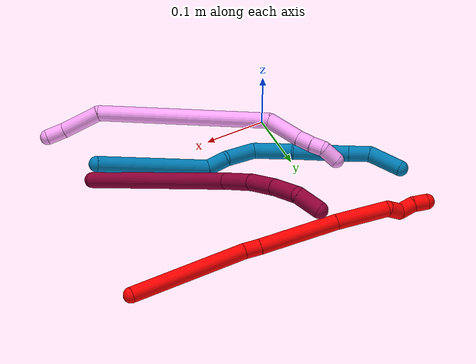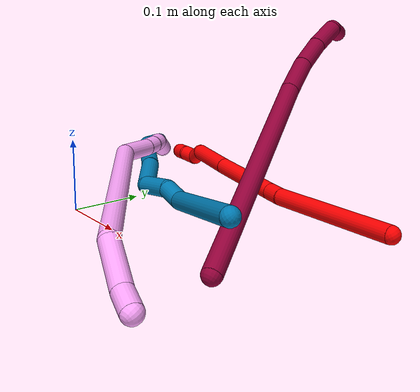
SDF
<sdf version="1.7">
 <world name="default">
  <model name="2">
   <static>0</static>
   <link name="2">
    <collision name="collision-cylinder-e_1_1_4">
     <pose>-0.081444 0.021809 0.044616 -0.454664 -1.02323 0.258329</pose>
     <geometry><cylinder><radius>0.0125</radius><length>0.190781</length></cylinder></geometry>
     <surface>
      <friction><ode><mu>1.16</mu><mu2>1.16</mu2><slip1>0</slip1><slip2>0</slip2></ode></friction>
      <contact><ode><kp>1e+06</kp><kd>1</kd><max_vel>0</max_vel><min_depth>0.001</min_depth></ode></contact>
     </surface>
    </collision>
    <visual name="visual-cylinder-e_1_1_4">
     <pose>-0.081444 0.021809 0.044616 -0.454664 -1.02323 0.258329</pose>
     <geometry><cylinder><radius>0.0125</radius><length>0.190781</length></cylinder></geometry>
     <material><ambient>1 0 0 1</ambient></material>
    </visual>
    <collision name="collision-cylinder-e_2_4_5">
     <pose>-0.173365 0.04847 0.095147 -0.686949 -0.940199 0.359516</pose>
     <geometry><cylinder><radius>0.0125</radius><length>0.025947</length></cylinder></geometry>
     <surface>
      <friction><ode><mu>1.16</mu><mu2>1.16</mu2><slip1>0</slip1><slip2>0</slip2></ode></friction>
      <contact><ode><kp>1e+06</kp><kd>1</kd><max_vel>0</max_vel><min_depth>0.001</min_depth></ode></contact>
     </surface>
    </collision>
    <visual name="visual-cylinder-e_2_4_5">
     <pose>-0.173365 0.04847 0.095147 -0.686949 -0.940199 0.359516</pose>
     <geometry><cylinder><radius>0.0125</radius><length>0.025947</length></cylinder></geometry>
     <material><ambient>1 0 0 1</ambient></material>
    </visual>
    <collision name="collision-cylinder-e_3_5_6">
     <pose>-0.234068 0.075944 0.132165 -0.628837 -0.91728 0.318427</pose>
     <geometry><cylinder><radius>0.0125</radius><length>0.126518</length></cylinder></geometry>
     <surface>
      <friction><ode><mu>1.16</mu><mu2>1.16</mu2><slip1>0</slip1><slip2>0</slip2></ode></friction>
      <contact><ode><kp>1e+06</kp><kd>1</kd><max_vel>0</max_vel><min_depth>0.001</min_depth></ode></contact>
     </surface>
    </collision>
    <visual name="visual-cylinder-e_3_5_6">
     <pose>-0.234068 0.075944 0.132165 -0.628837 -0.91728 0.318427</pose>
     <geometry><cylinder><radius>0.0125</radius><length>0.126518</length></cylinder></geometry>
     <material><ambient>1 0 0 1</ambient></material>
    </visual>
    <collision name="collision-cylinder-e_4_6_7">
     <pose>-0.317243 0.115919 0.182506 -0.733906 -0.904481 0.36921</pose>
     <geometry><cylinder><radius>0.0125</radius><length>0.083831</length></cylinder></geometry>
     <surface>
      <friction><ode><mu>1.16</mu><mu2>1.16</mu2><slip1>0</slip1><slip2>0</slip2></ode></friction>
      <contact><ode><kp>1e+06</kp><kd>1</kd><max_vel>0</max_vel><min_depth>0.001</min_depth></ode></contact>
     </surface>
    </collision>
    <visual name="visual-cylinder-e_4_6_7">
     <pose>-0.317243 0.115919 0.182506 -0.733906 -0.904481 0.36921</pose>
     <geometry><cylinder><radius>0.0125</radius><length>0.083831</length></cylinder></geometry>
     <material><ambient>1 0 0 1</ambient></material>
    </visual>
    <collision name="collision-cylinder-e_5_7_8">
     <pose>-0.362173 0.136264 0.200426 -1.98583 -1.30427 1.72789</pose>
     <geometry><cylinder><radius>0.0125</radius><length>0.024837</length></cylinder></geometry>
     <surface>
      <friction><ode><mu>1.16</mu><mu2>1.16</mu2><slip1>0</slip1><slip2>0</slip2></ode></friction>
      <contact><ode><kp>1e+06</kp><kd>1</kd><max_vel>0</max_vel><min_depth>0.001</min_depth></ode></contact>
     </surface>
    </collision>
    <visual name="visual-cylinder-e_5_7_8">
     <pose>-0.362173 0.136264 0.200426 -1.98583 -1.30427 1.72789</pose>
     <geometry><cylinder><radius>0.0125</radius><length>0.024837</length></cylinder></geometry>
     <material><ambient>1 0 0 1</ambient></material>
    </visual>
    <collision name="collision-cylinder-e_6_8_9">
     <pose>-0.384061 0.141376 0.206164 -0.291709 -0.931388 0.147383</pose>
     <geometry><cylinder><radius>0.0125</radius><length>0.024695</length></cylinder></geometry>
     <surface>
      <friction><ode><mu>1.16</mu><mu2>1.16</mu2><slip1>0</slip1><slip2>0</slip2></ode></friction>
      <contact><ode><kp>1e+06</kp><kd>1</kd><max_vel>0</max_vel><min_depth>0.001</min_depth></ode></contact>
     </surface>
    </collision>
    <visual name="visual-cylinder-e_6_8_9">
     <pose>-0.384061 0.141376 0.206164 -0.291709 -0.931388 0.147383</pose>
     <geometry><cylinder><radius>0.0125</radius><length>0.024695</length></cylinder></geometry>
     <material><ambient>1 0 0 1</ambient></material>
    </visual>
    <collision name="collision-cylinder-e_7_9_2">
     <pose>-0.403821 0.148087 0.217539 -0.816126 -1.0016 0.464718</pose>
     <geometry><cylinder><radius>0.0125</radius><length>0.023391</length></cylinder></geometry>
     <surface>
      <friction><ode><mu>1.16</mu><mu2>1.16</mu2><slip1>0</slip1><slip2>0</slip2></ode></friction>
      <contact><ode><kp>1e+06</kp><kd>1</kd><max_vel>0</max_vel><min_depth>0.001</min_depth></ode></contact>
     </surface>
    </collision>
    <visual name="visual-cylinder-e_7_9_2">
     <pose>-0.403821 0.148087 0.217539 -0.816126 -1.0016 0.464718</pose>
     <geometry><cylinder><radius>0.0125</radius><length>0.023391</length></cylinder></geometry>
     <material><ambient>1 0 0 1</ambient></material>
    </visual>
    <collision name="collision-sphere-2">
     <pose>-0.413673 0.152679 0.221857 0 -0 0</pose>
     <geometry><sphere><radius>0.0125</radius></sphere></geometry>
     <surface>
      <friction><ode><mu>1.16</mu><mu2>1.16</mu2><slip1>0</slip1><slip2>0</slip2></ode></friction>
      <contact><ode><kp>1e+06</kp><kd>1</kd><max_vel>0</max_vel><min_depth>0.001</min_depth></ode></contact>
     </surface>
    </collision>
    <visual name="visual-sphere-2">
     <pose>-0.413673 0.152679 0.221857 0 -0 0</pose>
     <geometry><sphere><radius>0.0125</radius></sphere></geometry>
     <material><ambient>1 0 0 1</ambient></material>
    </visual>
    <collision name="collision-sphere-9">
     <pose>-0.39397 0.143495 0.21322 0 -0 0</pose>
     <geometry><sphere><radius>0.0125</radius></sphere></geometry>
     <surface>
      <friction><ode><mu>1.16</mu><mu2>1.16</mu2><slip1>0</slip1><slip2>0</slip2></ode></friction>
      <contact><ode><kp>1e+06</kp><kd>1</kd><max_vel>0</max_vel><min_depth>0.001</min_depth></ode></contact>
     </surface>
    </collision>
    <visual name="visual-sphere-9">
     <pose>-0.39397 0.143495 0.21322 0 -0 0</pose>
     <geometry><sphere><radius>0.0125</radius></sphere></geometry>
     <material><ambient>1 0 0 1</ambient></material>
    </visual>
    <collision name="collision-sphere-4">
     <pose>-0.162887 0.043619 0.089232 0 -0 0</pose>
     <geometry><sphere><radius>0.0125</radius></sphere></geometry>
     <surface>
      <friction><ode><mu>1.16</mu><mu2>1.16</mu2><slip1>0</slip1><slip2>0</slip2></ode></friction>
      <contact><ode><kp>1e+06</kp><kd>1</kd><max_vel>0</max_vel><min_depth>0.001</min_depth></ode></contact>
     </surface>
    </collision>
    <visual name="visual-sphere-4">
     <pose>-0.162887 0.043619 0.089232 0 -0 0</pose>
     <geometry><sphere><radius>0.0125</radius></sphere></geometry>
     <material><ambient>1 0 0 1</ambient></material>
    </visual>
    <collision name="collision-sphere-1">
     <geometry><sphere><radius>0.0125</radius></sphere></geometry>
     <surface>
      <friction><ode><mu>1.16</mu><mu2>1.16</mu2><slip1>0</slip1><slip2>0</slip2></ode></friction>
      <contact><ode><kp>1e+06</kp><kd>1</kd><max_vel>0</max_vel><min_depth>0.001</min_depth></ode></contact>
     </surface>
    </collision>
    <visual name="visual-sphere-1">
     <geometry><sphere><radius>0.0125</radius></sphere></geometry>
     <material><ambient>1 0 0 1</ambient></material>
    </visual>
    <collision name="collision-sphere-8">
     <pose>-0.374153 0.139257 0.199107 0 -0 0</pose>
     <geometry><sphere><radius>0.0125</radius></sphere></geometry>
     <surface>
      <friction><ode><mu>1.16</mu><mu2>1.16</mu2><slip1>0</slip1><slip2>0</slip2></ode></friction>
      <contact><ode><kp>1e+06</kp><kd>1</kd><max_vel>0</max_vel><min_depth>0.001</min_depth></ode></contact>
     </surface>
    </collision>
    <visual name="visual-sphere-8">
     <pose>-0.374153 0.139257 0.199107 0 -0 0</pose>
     <geometry><sphere><radius>0.0125</radius></sphere></geometry>
     <material><ambient>1 0 0 1</ambient></material>
    </visual>
    <collision name="collision-sphere-5">
     <pose>-0.183844 0.053321 0.101061 0 -0 0</pose>
     <geometry><sphere><radius>0.0125</radius></sphere></geometry>
     <surface>
      <friction><ode><mu>1.16</mu><mu2>1.16</mu2><slip1>0</slip1><slip2>0</slip2></ode></friction>
      <contact><ode><kp>1e+06</kp><kd>1</kd><max_vel>0</max_vel><min_depth>0.001</min_depth></ode></contact>
     </surface>
    </collision>
    <visual name="visual-sphere-5">
     <pose>-0.183844 0.053321 0.101061 0 -0 0</pose>
     <geometry><sphere><radius>0.0125</radius></sphere></geometry>
     <material><ambient>1 0 0 1</ambient></material>
    </visual>
    <collision name="collision-sphere-6">
     <pose>-0.284293 0.098566 0.163268 0 -0 0</pose>
     <geometry><sphere><radius>0.0125</radius></sphere></geometry>
     <surface>
      <friction><ode><mu>1.16</mu><mu2>1.16</mu2><slip1>0</slip1><slip2>0</slip2></ode></friction>
      <contact><ode><kp>1e+06</kp><kd>1</kd><max_vel>0</max_vel><min_depth>0.001</min_depth></ode></contact>
     </surface>
    </collision>
    <visual name="visual-sphere-6">
     <pose>-0.284293 0.098566 0.163268 0 -0 0</pose>
     <geometry><sphere><radius>0.0125</radius></sphere></geometry>
     <material><ambient>1 0 0 1</ambient></material>
    </visual>
    <collision name="collision-sphere-7">
     <pose>-0.350193 0.133271 0.201744 0 -0 0</pose>
     <geometry><sphere><radius>0.0125</radius></sphere></geometry>
     <surface>
      <friction><ode><mu>1.16</mu><mu2>1.16</mu2><slip1>0</slip1><slip2>0</slip2></ode></friction>
      <contact><ode><kp>1e+06</kp><kd>1</kd><max_vel>0</max_vel><min_depth>0.001</min_depth></ode></contact>
     </surface>
    </collision>
    <visual name="visual-sphere-7">
     <pose>-0.350193 0.133271 0.201744 0 -0 0</pose>
     <geometry><sphere><radius>0.0125</radius></sphere></geometry>
     <material><ambient>1 0 0 1</ambient></material>
    </visual>
    <inertial>
     <pose>-0.208341 0.070168 0.116319 0 -0 0</pose>
     <mass>0.5</mass>
     <inertia>
      <ixx>0.000521</ixx>
      <ixy>0</ixy>
      <ixz>0</ixz>
      <iyy>0.000915</iyy>
      <iyz>0</iyz>
      <izz>0.000484</izz>
     </inertia>
    </inertial>
   </link>
   <pose>0.34993 0.243327 0.012501 0.189153 -0.53649 0.138691</pose>
  </model>
  <model name="4">
   <static>0</static>
   <link name="4">
    <collision name="collision-cylinder-e_1_1_4">
     <pose>0.008783 0.009709 -0.006749 -2.17822 0.638866 -1.12827</pose>
     <geometry><cylinder><radius>0.0125</radius><length>0.029458</length></cylinder></geometry>
     <surface>
      <friction><ode><mu>1.16</mu><mu2>1.16</mu2><slip1>0</slip1><slip2>0</slip2></ode></friction>
      <contact><ode><kp>1e+06</kp><kd>1</kd><max_vel>0</max_vel><min_depth>0.001</min_depth></ode></contact>
     </surface>
    </collision>
    <visual name="visual-cylinder-e_1_1_4">
     <pose>0.008783 0.009709 -0.006749 -2.17822 0.638866 -1.12827</pose>
     <geometry><cylinder><radius>0.0125</radius><length>0.029458</length></cylinder></geometry>
     <material><ambient>1 0.65098 0.996078 1</ambient></material>
    </visual>
    <collision name="collision-cylinder-e_2_4_5">
     <pose>0.038702 0.035855 -0.031743 -2.4083 0.710669 -1.53657</pose>
     <geometry><cylinder><radius>0.0125</radius><length>0.064804</length></cylinder></geometry>
     <surface>
      <friction><ode><mu>1.16</mu><mu2>1.16</mu2><slip1>0</slip1><slip2>0</slip2></ode></friction>
      <contact><ode><kp>1e+06</kp><kd>1</kd><max_vel>0</max_vel><min_depth>0.001</min_depth></ode></contact>
     </surface>
    </collision>
    <visual name="visual-cylinder-e_2_4_5">
     <pose>0.038702 0.035855 -0.031743 -2.4083 0.710669 -1.53657</pose>
     <geometry><cylinder><radius>0.0125</radius><length>0.064804</length></cylinder></geometry>
     <material><ambient>1 0.65098 0.996078 1</ambient></material>
    </visual>
    <collision name="collision-cylinder-e_3_5_6">
     <pose>0.089737 0.152449 -0.140969 -2.30822 0.21746 -0.483611</pose>
     <geometry><cylinder><radius>0.0125</radius><length>0.277147</length></cylinder></geometry>
     <surface>
      <friction><ode><mu>1.16</mu><mu2>1.16</mu2><slip1>0</slip1><slip2>0</slip2></ode></friction>
      <contact><ode><kp>1e+06</kp><kd>1</kd><max_vel>0</max_vel><min_depth>0.001</min_depth></ode></contact>
     </surface>
    </collision>
    <visual name="visual-cylinder-e_3_5_6">
     <pose>0.089737 0.152449 -0.140969 -2.30822 0.21746 -0.483611</pose>
     <geometry><cylinder><radius>0.0125</radius><length>0.277147</length></cylinder></geometry>
     <material><ambient>1 0.65098 0.996078 1</ambient></material>
    </visual>
    <collision name="collision-cylinder-e_4_6_7">
     <pose>0.112994 0.26711 -0.256147 -2.60164 -0.231148 0.794425</pose>
     <geometry><cylinder><radius>0.0125</radius><length>0.057964</length></cylinder></geometry>
     <surface>
      <friction><ode><mu>1.16</mu><mu2>1.16</mu2><slip1>0</slip1><slip2>0</slip2></ode></friction>
      <contact><ode><kp>1e+06</kp><kd>1</kd><max_vel>0</max_vel><min_depth>0.001</min_depth></ode></contact>
     </surface>
    </collision>
    <visual name="visual-cylinder-e_4_6_7">
     <pose>0.112994 0.26711 -0.256147 -2.60164 -0.231148 0.794425</pose>
     <geometry><cylinder><radius>0.0125</radius><length>0.057964</length></cylinder></geometry>
     <material><ambient>1 0.65098 0.996078 1</ambient></material>
    </visual>
    <collision name="collision-cylinder-e_5_7_8">
     <pose>0.10464 0.287703 -0.290258 -2.59067 -0.146314 0.507406</pose>
     <geometry><cylinder><radius>0.0125</radius><length>0.02352</length></cylinder></geometry>
     <surface>
      <friction><ode><mu>1.16</mu><mu2>1.16</mu2><slip1>0</slip1><slip2>0</slip2></ode></friction>
      <contact><ode><kp>1e+06</kp><kd>1</kd><max_vel>0</max_vel><min_depth>0.001</min_depth></ode></contact>
     </surface>
    </collision>
    <visual name="visual-cylinder-e_5_7_8">
     <pose>0.10464 0.287703 -0.290258 -2.59067 -0.146314 0.507406</pose>
     <geometry><cylinder><radius>0.0125</radius><length>0.02352</length></cylinder></geometry>
     <material><ambient>1 0.65098 0.996078 1</ambient></material>
    </visual>
    <collision name="collision-cylinder-e_6_8_9">
     <pose>0.102174 0.299965 -0.308313 -2.493 -0.073419 0.217636</pose>
     <geometry><cylinder><radius>0.0125</radius><length>0.020489</length></cylinder></geometry>
     <surface>
      <friction><ode><mu>1.16</mu><mu2>1.16</mu2><slip1>0</slip1><slip2>0</slip2></ode></friction>
      <contact><ode><kp>1e+06</kp><kd>1</kd><max_vel>0</max_vel><min_depth>0.001</min_depth></ode></contact>
     </surface>
    </collision>
    <visual name="visual-cylinder-e_6_8_9">
     <pose>0.102174 0.299965 -0.308313 -2.493 -0.073419 0.217636</pose>
     <geometry><cylinder><radius>0.0125</radius><length>0.020489</length></cylinder></geometry>
     <material><ambient>1 0.65098 0.996078 1</ambient></material>
    </visual>
    <collision name="collision-cylinder-e_7_9_2">
     <pose>0.095311 0.316608 -0.321944 -2.05366 -0.477061 0.764506</pose>
     <geometry><cylinder><radius>0.0125</radius><length>0.026619</length></cylinder></geometry>
     <surface>
      <friction><ode><mu>1.16</mu><mu2>1.16</mu2><slip1>0</slip1><slip2>0</slip2></ode></friction>
      <contact><ode><kp>1e+06</kp><kd>1</kd><max_vel>0</max_vel><min_depth>0.001</min_depth></ode></contact>
     </surface>
    </collision>
    <visual name="visual-cylinder-e_7_9_2">
     <pose>0.095311 0.316608 -0.321944 -2.05366 -0.477061 0.764506</pose>
     <geometry><cylinder><radius>0.0125</radius><length>0.026619</length></cylinder></geometry>
     <material><ambient>1 0.65098 0.996078 1</ambient></material>
    </visual>
    <collision name="collision-sphere-2">
     <pose>0.0892 0.32708 -0.327434 0 -0 0</pose>
     <geometry><sphere><radius>0.0125</radius></sphere></geometry>
     <surface>
      <friction><ode><mu>1.16</mu><mu2>1.16</mu2><slip1>0</slip1><slip2>0</slip2></ode></friction>
      <contact><ode><kp>1e+06</kp><kd>1</kd><max_vel>0</max_vel><min_depth>0.001</min_depth></ode></contact>
     </surface>
    </collision>
    <visual name="visual-sphere-2">
     <pose>0.0892 0.32708 -0.327434 0 -0 0</pose>
     <geometry><sphere><radius>0.0125</radius></sphere></geometry>
     <material><ambient>1 0.65098 0.996078 1</ambient></material>
    </visual>
    <collision name="collision-sphere-9">
     <pose>0.101423 0.306137 -0.316455 0 -0 0</pose>
     <geometry><sphere><radius>0.0125</radius></sphere></geometry>
     <surface>
      <friction><ode><mu>1.16</mu><mu2>1.16</mu2><slip1>0</slip1><slip2>0</slip2></ode></friction>
      <contact><ode><kp>1e+06</kp><kd>1</kd><max_vel>0</max_vel><min_depth>0.001</min_depth></ode></contact>
     </surface>
    </collision>
    <visual name="visual-sphere-9">
     <pose>0.101423 0.306137 -0.316455 0 -0 0</pose>
     <geometry><sphere><radius>0.0125</radius></sphere></geometry>
     <material><ambient>1 0.65098 0.996078 1</ambient></material>
    </visual>
    <collision name="collision-sphere-4">
     <pose>0.017565 0.019418 -0.013497 0 -0 0</pose>
     <geometry><sphere><radius>0.0125</radius></sphere></geometry>
     <surface>
      <friction><ode><mu>1.16</mu><mu2>1.16</mu2><slip1>0</slip1><slip2>0</slip2></ode></friction>
      <contact><ode><kp>1e+06</kp><kd>1</kd><max_vel>0</max_vel><min_depth>0.001</min_depth></ode></contact>
     </surface>
    </collision>
    <visual name="visual-sphere-4">
     <pose>0.017565 0.019418 -0.013497 0 -0 0</pose>
     <geometry><sphere><radius>0.0125</radius></sphere></geometry>
     <material><ambient>1 0.65098 0.996078 1</ambient></material>
    </visual>
    <collision name="collision-sphere-1">
     <geometry><sphere><radius>0.0125</radius></sphere></geometry>
     <surface>
      <friction><ode><mu>1.16</mu><mu2>1.16</mu2><slip1>0</slip1><slip2>0</slip2></ode></friction>
      <contact><ode><kp>1e+06</kp><kd>1</kd><max_vel>0</max_vel><min_depth>0.001</min_depth></ode></contact>
     </surface>
    </collision>
    <visual name="visual-sphere-1">
     <geometry><sphere><radius>0.0125</radius></sphere></geometry>
     <material><ambient>1 0.65098 0.996078 1</ambient></material>
    </visual>
    <collision name="collision-sphere-8">
     <pose>0.102926 0.293793 -0.30017 0 -0 0</pose>
     <geometry><sphere><radius>0.0125</radius></sphere></geometry>
     <surface>
      <friction><ode><mu>1.16</mu><mu2>1.16</mu2><slip1>0</slip1><slip2>0</slip2></ode></friction>
      <contact><ode><kp>1e+06</kp><kd>1</kd><max_vel>0</max_vel><min_depth>0.001</min_depth></ode></contact>
     </surface>
    </collision>
    <visual name="visual-sphere-8">
     <pose>0.102926 0.293793 -0.30017 0 -0 0</pose>
     <geometry><sphere><radius>0.0125</radius></sphere></geometry>
     <material><ambient>1 0.65098 0.996078 1</ambient></material>
    </visual>
    <collision name="collision-sphere-5">
     <pose>0.05984 0.052293 -0.04999 0 -0 0</pose>
     <geometry><sphere><radius>0.0125</radius></sphere></geometry>
     <surface>
      <friction><ode><mu>1.16</mu><mu2>1.16</mu2><slip1>0</slip1><slip2>0</slip2></ode></friction>
      <contact><ode><kp>1e+06</kp><kd>1</kd><max_vel>0</max_vel><min_depth>0.001</min_depth></ode></contact>
     </surface>
    </collision>
    <visual name="visual-sphere-5">
     <pose>0.05984 0.052293 -0.04999 0 -0 0</pose>
     <geometry><sphere><radius>0.0125</radius></sphere></geometry>
     <material><ambient>1 0.65098 0.996078 1</ambient></material>
    </visual>
    <collision name="collision-sphere-6">
     <pose>0.119634 0.252606 -0.231949 0 -0 0</pose>
     <geometry><sphere><radius>0.0125</radius></sphere></geometry>
     <surface>
      <friction><ode><mu>1.16</mu><mu2>1.16</mu2><slip1>0</slip1><slip2>0</slip2></ode></friction>
      <contact><ode><kp>1e+06</kp><kd>1</kd><max_vel>0</max_vel><min_depth>0.001</min_depth></ode></contact>
     </surface>
    </collision>
    <visual name="visual-sphere-6">
     <pose>0.119634 0.252606 -0.231949 0 -0 0</pose>
     <geometry><sphere><radius>0.0125</radius></sphere></geometry>
     <material><ambient>1 0.65098 0.996078 1</ambient></material>
    </visual>
    <collision name="collision-sphere-7">
     <pose>0.106355 0.281613 -0.280345 0 -0 0</pose>
     <geometry><sphere><radius>0.0125</radius></sphere></geometry>
     <surface>
      <friction><ode><mu>1.16</mu><mu2>1.16</mu2><slip1>0</slip1><slip2>0</slip2></ode></friction>
      <contact><ode><kp>1e+06</kp><kd>1</kd><max_vel>0</max_vel><min_depth>0.001</min_depth></ode></contact>
     </surface>
    </collision>
    <visual name="visual-sphere-7">
     <pose>0.106355 0.281613 -0.280345 0 -0 0</pose>
     <geometry><sphere><radius>0.0125</radius></sphere></geometry>
     <material><ambient>1 0.65098 0.996078 1</ambient></material>
    </visual>
    <inertial>
     <pose>0.082557 0.163367 -0.155772 0 -0 0</pose>
     <mass>0.5</mass>
     <inertia>
      <ixx>0.000753</ixx>
      <ixy>0</ixy>
      <ixz>0</ixz>
      <iyy>-0.001722</iyy>
      <iyz>0</iyz>
      <izz>-0.001741</izz>
     </inertia>
    </inertial>
   </link>
   <pose>0.331663 -0.114133 0.016502 -2.26336 -0.853 -2.4281</pose>
  </model>
  <model name="8">
   <static>0</static>
   <link name="8">
    <collision name="collision-cylinder-e_1_1_4">
     <pose>-0.049716 0.0144 0.143486 -0.100027 -0.331994 0.016772</pose>
     <geometry><cylinder><radius>0.0125</radius><length>0.305071</length></cylinder></geometry>
     <surface>
      <friction><ode><mu>1.16</mu><mu2>1.16</mu2><slip1>0</slip1><slip2>0</slip2></ode></friction>
      <contact><ode><kp>1e+06</kp><kd>1</kd><max_vel>0</max_vel><min_depth>0.001</min_depth></ode></contact>
     </surface>
    </collision>
    <visual name="visual-cylinder-e_1_1_4">
     <pose>-0.049716 0.0144 0.143486 -0.100027 -0.331994 0.016772</pose>
     <geometry><cylinder><radius>0.0125</radius><length>0.305071</length></cylinder></geometry>
     <material><ambient>0.584314 0 0.227451 1</ambient></material>
    </visual>
    <collision name="collision-cylinder-e_2_4_5">
     <pose>-0.107058 0.032114 0.313577 -0.12387 -0.27712 0.017296</pose>
     <geometry><cylinder><radius>0.0125</radius><length>0.055751</length></cylinder></geometry>
     <surface>
      <friction><ode><mu>1.16</mu><mu2>1.16</mu2><slip1>0</slip1><slip2>0</slip2></ode></friction>
      <contact><ode><kp>1e+06</kp><kd>1</kd><max_vel>0</max_vel><min_depth>0.001</min_depth></ode></contact>
     </surface>
    </collision>
    <visual name="visual-cylinder-e_2_4_5">
     <pose>-0.107058 0.032114 0.313577 -0.12387 -0.27712 0.017296</pose>
     <geometry><cylinder><radius>0.0125</radius><length>0.055751</length></cylinder></geometry>
     <material><ambient>0.584314 0 0.227451 1</ambient></material>
    </visual>
    <collision name="collision-cylinder-e_3_5_6">
     <pose>-0.120969 0.041121 0.364106 -0.233692 -0.250214 0.029522</pose>
     <geometry><cylinder><radius>0.0125</radius><length>0.050762</length></cylinder></geometry>
     <surface>
      <friction><ode><mu>1.16</mu><mu2>1.16</mu2><slip1>0</slip1><slip2>0</slip2></ode></friction>
      <contact><ode><kp>1e+06</kp><kd>1</kd><max_vel>0</max_vel><min_depth>0.001</min_depth></ode></contact>
     </surface>
    </collision>
    <visual name="visual-cylinder-e_3_5_6">
     <pose>-0.120969 0.041121 0.364106 -0.233692 -0.250214 0.029522</pose>
     <geometry><cylinder><radius>0.0125</radius><length>0.050762</length></cylinder></geometry>
     <material><ambient>0.584314 0 0.227451 1</ambient></material>
    </visual>
    <collision name="collision-cylinder-e_4_6_7">
     <pose>-0.132426 0.054293 0.411962 -0.302835 -0.203443 0.031147</pose>
     <geometry><cylinder><radius>0.0125</radius><length>0.051206</length></cylinder></geometry>
     <surface>
      <friction><ode><mu>1.16</mu><mu2>1.16</mu2><slip1>0</slip1><slip2>0</slip2></ode></friction>
      <contact><ode><kp>1e+06</kp><kd>1</kd><max_vel>0</max_vel><min_depth>0.001</min_depth></ode></contact>
     </surface>
    </collision>
    <visual name="visual-cylinder-e_4_6_7">
     <pose>-0.132426 0.054293 0.411962 -0.302835 -0.203443 0.031147</pose>
     <geometry><cylinder><radius>0.0125</radius><length>0.051206</length></cylinder></geometry>
     <material><ambient>0.584314 0 0.227451 1</ambient></material>
    </visual>
    <collision name="collision-cylinder-e_5_7_2">
     <pose>-0.148791 0.073622 0.444866 -0.922915 -0.645417 0.329554</pose>
     <geometry><cylinder><radius>0.0125</radius><length>0.03721</length></cylinder></geometry>
     <surface>
      <friction><ode><mu>1.16</mu><mu2>1.16</mu2><slip1>0</slip1><slip2>0</slip2></ode></friction>
      <contact><ode><kp>1e+06</kp><kd>1</kd><max_vel>0</max_vel><min_depth>0.001</min_depth></ode></contact>
     </surface>
    </collision>
    <visual name="visual-cylinder-e_5_7_2">
     <pose>-0.148791 0.073622 0.444866 -0.922915 -0.645417 0.329554</pose>
     <geometry><cylinder><radius>0.0125</radius><length>0.03721</length></cylinder></geometry>
     <material><ambient>0.584314 0 0.227451 1</ambient></material>
    </visual>
    <collision name="collision-sphere-2">
     <pose>-0.159982 0.085473 0.453835 0 -0 0</pose>
     <geometry><sphere><radius>0.0125</radius></sphere></geometry>
     <surface>
      <friction><ode><mu>1.16</mu><mu2>1.16</mu2><slip1>0</slip1><slip2>0</slip2></ode></friction>
      <contact><ode><kp>1e+06</kp><kd>1</kd><max_vel>0</max_vel><min_depth>0.001</min_depth></ode></contact>
     </surface>
    </collision>
    <visual name="visual-sphere-2">
     <pose>-0.159982 0.085473 0.453835 0 -0 0</pose>
     <geometry><sphere><radius>0.0125</radius></sphere></geometry>
     <material><ambient>0.584314 0 0.227451 1</ambient></material>
    </visual>
    <collision name="collision-sphere-7">
     <pose>-0.137599 0.061771 0.435896 0 -0 0</pose>
     <geometry><sphere><radius>0.0125</radius></sphere></geometry>
     <surface>
      <friction><ode><mu>1.16</mu><mu2>1.16</mu2><slip1>0</slip1><slip2>0</slip2></ode></friction>
      <contact><ode><kp>1e+06</kp><kd>1</kd><max_vel>0</max_vel><min_depth>0.001</min_depth></ode></contact>
     </surface>
    </collision>
    <visual name="visual-sphere-7">
     <pose>-0.137599 0.061771 0.435896 0 -0 0</pose>
     <geometry><sphere><radius>0.0125</radius></sphere></geometry>
     <material><ambient>0.584314 0 0.227451 1</ambient></material>
    </visual>
    <collision name="collision-sphere-6">
     <pose>-0.127253 0.046815 0.388028 0 -0 0</pose>
     <geometry><sphere><radius>0.0125</radius></sphere></geometry>
     <surface>
      <friction><ode><mu>1.16</mu><mu2>1.16</mu2><slip1>0</slip1><slip2>0</slip2></ode></friction>
      <contact><ode><kp>1e+06</kp><kd>1</kd><max_vel>0</max_vel><min_depth>0.001</min_depth></ode></contact>
     </surface>
    </collision>
    <visual name="visual-sphere-6">
     <pose>-0.127253 0.046815 0.388028 0 -0 0</pose>
     <geometry><sphere><radius>0.0125</radius></sphere></geometry>
     <material><ambient>0.584314 0 0.227451 1</ambient></material>
    </visual>
    <collision name="collision-sphere-5">
     <pose>-0.114684 0.035426 0.340184 0 -0 0</pose>
     <geometry><sphere><radius>0.0125</radius></sphere></geometry>
     <surface>
      <friction><ode><mu>1.16</mu><mu2>1.16</mu2><slip1>0</slip1><slip2>0</slip2></ode></friction>
      <contact><ode><kp>1e+06</kp><kd>1</kd><max_vel>0</max_vel><min_depth>0.001</min_depth></ode></contact>
     </surface>
    </collision>
    <visual name="visual-sphere-5">
     <pose>-0.114684 0.035426 0.340184 0 -0 0</pose>
     <geometry><sphere><radius>0.0125</radius></sphere></geometry>
     <material><ambient>0.584314 0 0.227451 1</ambient></material>
    </visual>
    <collision name="collision-sphere-1">
     <geometry><sphere><radius>0.0125</radius></sphere></geometry>
     <surface>
      <friction><ode><mu>1.16</mu><mu2>1.16</mu2><slip1>0</slip1><slip2>0</slip2></ode></friction>
      <contact><ode><kp>1e+06</kp><kd>1</kd><max_vel>0</max_vel><min_depth>0.001</min_depth></ode></contact>
     </surface>
    </collision>
    <visual name="visual-sphere-1">
     <geometry><sphere><radius>0.0125</radius></sphere></geometry>
     <material><ambient>0.584314 0 0.227451 1</ambient></material>
    </visual>
    <collision name="collision-sphere-4">
     <pose>-0.099432 0.028801 0.286971 0 -0 0</pose>
     <geometry><sphere><radius>0.0125</radius></sphere></geometry>
     <surface>
      <friction><ode><mu>1.16</mu><mu2>1.16</mu2><slip1>0</slip1><slip2>0</slip2></ode></friction>
      <contact><ode><kp>1e+06</kp><kd>1</kd><max_vel>0</max_vel><min_depth>0.001</min_depth></ode></contact>
     </surface>
    </collision>
    <visual name="visual-sphere-4">
     <pose>-0.099432 0.028801 0.286971 0 -0 0</pose>
     <geometry><sphere><radius>0.0125</radius></sphere></geometry>
     <material><ambient>0.584314 0 0.227451 1</ambient></material>
    </visual>
    <inertial>
     <pose>-0.079187 0.027581 0.234773 0 -0 0</pose>
     <mass>0.5</mass>
     <inertia>
      <ixx>0.002321</ixx>
      <ixy>0</ixy>
      <ixz>0</ixz>
      <iyy>0.00246</iyy>
      <iyz>0</iyz>
      <izz>0.000587</izz>
     </inertia>
    </inertial>
   </link>
   <pose>0.304687 0.001206 0.011796 -0.743559 -0.269738 -0.111091</pose>
  </model>
  <model name="9">
   <static>0</static>
   <link name="9">
    <collision name="collision-cylinder-e_1_1_4">
     <pose>-0.042422 0.045929 -0.063667 -2.51665 -0.495427 1.32841</pose>
     <geometry><cylinder><radius>0.0125</radius><length>0.178465</length></cylinder></geometry>
     <surface>
      <friction><ode><mu>1.16</mu><mu2>1.16</mu2><slip1>0</slip1><slip2>0</slip2></ode></friction>
      <contact><ode><kp>1e+06</kp><kd>1</kd><max_vel>0</max_vel><min_depth>0.001</min_depth></ode></contact>
     </surface>
    </collision>
    <visual name="visual-cylinder-e_1_1_4">
     <pose>-0.042422 0.045929 -0.063667 -2.51665 -0.495427 1.32841</pose>
     <geometry><cylinder><radius>0.0125</radius><length>0.178465</length></cylinder></geometry>
     <material><ambient>0 0.490196 0.709804 1</ambient></material>
    </visual>
    <collision name="collision-cylinder-e_2_4_5">
     <pose>-0.09847 0.095349 -0.135528 -2.7388 -0.991828 2.41988</pose>
     <geometry><cylinder><radius>0.0125</radius><length>0.032559</length></cylinder></geometry>
     <surface>
      <friction><ode><mu>1.16</mu><mu2>1.16</mu2><slip1>0</slip1><slip2>0</slip2></ode></friction>
      <contact><ode><kp>1e+06</kp><kd>1</kd><max_vel>0</max_vel><min_depth>0.001</min_depth></ode></contact>
     </surface>
    </collision>
    <visual name="visual-cylinder-e_2_4_5">
     <pose>-0.09847 0.095349 -0.135528 -2.7388 -0.991828 2.41988</pose>
     <geometry><cylinder><radius>0.0125</radius><length>0.032559</length></cylinder></geometry>
     <material><ambient>0 0.490196 0.709804 1</ambient></material>
    </visual>
    <collision name="collision-cylinder-e_3_5_6">
     <pose>-0.126528 0.103765 -0.163595 -2.89867 -0.613999 2.40653</pose>
     <geometry><cylinder><radius>0.0125</radius><length>0.050097</length></cylinder></geometry>
     <surface>
      <friction><ode><mu>1.16</mu><mu2>1.16</mu2><slip1>0</slip1><slip2>0</slip2></ode></friction>
      <contact><ode><kp>1e+06</kp><kd>1</kd><max_vel>0</max_vel><min_depth>0.001</min_depth></ode></contact>
     </surface>
    </collision>
    <visual name="visual-cylinder-e_3_5_6">
     <pose>-0.126528 0.103765 -0.163595 -2.89867 -0.613999 2.40653</pose>
     <geometry><cylinder><radius>0.0125</radius><length>0.050097</length></cylinder></geometry>
     <material><ambient>0 0.490196 0.709804 1</ambient></material>
    </visual>
    <collision name="collision-cylinder-e_4_6_7">
     <pose>-0.161647 0.131657 -0.192314 -1.93849 -0.698987 0.9762</pose>
     <geometry><cylinder><radius>0.0125</radius><length>0.064305</length></cylinder></geometry>
     <surface>
      <friction><ode><mu>1.16</mu><mu2>1.16</mu2><slip1>0</slip1><slip2>0</slip2></ode></friction>
      <contact><ode><kp>1e+06</kp><kd>1</kd><max_vel>0</max_vel><min_depth>0.001</min_depth></ode></contact>
     </surface>
    </collision>
    <visual name="visual-cylinder-e_4_6_7">
     <pose>-0.161647 0.131657 -0.192314 -1.93849 -0.698987 0.9762</pose>
     <geometry><cylinder><radius>0.0125</radius><length>0.064305</length></cylinder></geometry>
     <material><ambient>0 0.490196 0.709804 1</ambient></material>
    </visual>
    <collision name="collision-cylinder-e_5_7_8">
     <pose>-0.208124 0.183723 -0.221427 -2.17913 -0.628789 1.11394</pose>
     <geometry><cylinder><radius>0.0125</radius><length>0.087693</length></cylinder></geometry>
     <surface>
      <friction><ode><mu>1.16</mu><mu2>1.16</mu2><slip1>0</slip1><slip2>0</slip2></ode></friction>
      <contact><ode><kp>1e+06</kp><kd>1</kd><max_vel>0</max_vel><min_depth>0.001</min_depth></ode></contact>
     </surface>
    </collision>
    <visual name="visual-cylinder-e_5_7_8">
     <pose>-0.208124 0.183723 -0.221427 -2.17913 -0.628789 1.11394</pose>
     <geometry><cylinder><radius>0.0125</radius><length>0.087693</length></cylinder></geometry>
     <material><ambient>0 0.490196 0.709804 1</ambient></material>
    </visual>
    <collision name="collision-cylinder-e_6_8_9">
     <pose>-0.244224 0.223882 -0.248686 -2.13465 -0.66737 1.12341</pose>
     <geometry><cylinder><radius>0.0125</radius><length>0.033319</length></cylinder></geometry>
     <surface>
      <friction><ode><mu>1.16</mu><mu2>1.16</mu2><slip1>0</slip1><slip2>0</slip2></ode></friction>
      <contact><ode><kp>1e+06</kp><kd>1</kd><max_vel>0</max_vel><min_depth>0.001</min_depth></ode></contact>
     </surface>
    </collision>
    <visual name="visual-cylinder-e_6_8_9">
     <pose>-0.244224 0.223882 -0.248686 -2.13465 -0.66737 1.12341</pose>
     <geometry><cylinder><radius>0.0125</radius><length>0.033319</length></cylinder></geometry>
     <material><ambient>0 0.490196 0.709804 1</ambient></material>
    </visual>
    <collision name="collision-cylinder-e_7_9_2">
     <pose>-0.262327 0.259599 -0.262644 -1.84609 -0.295222 0.388078</pose>
     <geometry><cylinder><radius>0.0125</radius><length>0.053562</length></cylinder></geometry>
     <surface>
      <friction><ode><mu>1.16</mu><mu2>1.16</mu2><slip1>0</slip1><slip2>0</slip2></ode></friction>
      <contact><ode><kp>1e+06</kp><kd>1</kd><max_vel>0</max_vel><min_depth>0.001</min_depth></ode></contact>
     </surface>
    </collision>
    <visual name="visual-cylinder-e_7_9_2">
     <pose>-0.262327 0.259599 -0.262644 -1.84609 -0.295222 0.388078</pose>
     <geometry><cylinder><radius>0.0125</radius><length>0.053562</length></cylinder></geometry>
     <material><ambient>0 0.490196 0.709804 1</ambient></material>
    </visual>
    <collision name="collision-sphere-2">
     <pose>-0.270119 0.284257 -0.269609 0 -0 0</pose>
     <geometry><sphere><radius>0.0125</radius></sphere></geometry>
     <surface>
      <friction><ode><mu>1.16</mu><mu2>1.16</mu2><slip1>0</slip1><slip2>0</slip2></ode></friction>
      <contact><ode><kp>1e+06</kp><kd>1</kd><max_vel>0</max_vel><min_depth>0.001</min_depth></ode></contact>
     </surface>
    </collision>
    <visual name="visual-sphere-2">
     <pose>-0.270119 0.284257 -0.269609 0 -0 0</pose>
     <geometry><sphere><radius>0.0125</radius></sphere></geometry>
     <material><ambient>0 0.490196 0.709804 1</ambient></material>
    </visual>
    <collision name="collision-sphere-9">
     <pose>-0.254535 0.234941 -0.255679 0 -0 0</pose>
     <geometry><sphere><radius>0.0125</radius></sphere></geometry>
     <surface>
      <friction><ode><mu>1.16</mu><mu2>1.16</mu2><slip1>0</slip1><slip2>0</slip2></ode></friction>
      <contact><ode><kp>1e+06</kp><kd>1</kd><max_vel>0</max_vel><min_depth>0.001</min_depth></ode></contact>
     </surface>
    </collision>
    <visual name="visual-sphere-9">
     <pose>-0.254535 0.234941 -0.255679 0 -0 0</pose>
     <geometry><sphere><radius>0.0125</radius></sphere></geometry>
     <material><ambient>0 0.490196 0.709804 1</ambient></material>
    </visual>
    <collision name="collision-sphere-4">
     <pose>-0.084844 0.091857 -0.127333 0 -0 0</pose>
     <geometry><sphere><radius>0.0125</radius></sphere></geometry>
     <surface>
      <friction><ode><mu>1.16</mu><mu2>1.16</mu2><slip1>0</slip1><slip2>0</slip2></ode></friction>
      <contact><ode><kp>1e+06</kp><kd>1</kd><max_vel>0</max_vel><min_depth>0.001</min_depth></ode></contact>
     </surface>
    </collision>
    <visual name="visual-sphere-4">
     <pose>-0.084844 0.091857 -0.127333 0 -0 0</pose>
     <geometry><sphere><radius>0.0125</radius></sphere></geometry>
     <material><ambient>0 0.490196 0.709804 1</ambient></material>
    </visual>
    <collision name="collision-sphere-1">
     <geometry><sphere><radius>0.0125</radius></sphere></geometry>
     <surface>
      <friction><ode><mu>1.16</mu><mu2>1.16</mu2><slip1>0</slip1><slip2>0</slip2></ode></friction>
      <contact><ode><kp>1e+06</kp><kd>1</kd><max_vel>0</max_vel><min_depth>0.001</min_depth></ode></contact>
     </surface>
    </collision>
    <visual name="visual-sphere-1">
     <geometry><sphere><radius>0.0125</radius></sphere></geometry>
     <material><ambient>0 0.490196 0.709804 1</ambient></material>
    </visual>
    <collision name="collision-sphere-8">
     <pose>-0.233913 0.212822 -0.241692 0 -0 0</pose>
     <geometry><sphere><radius>0.0125</radius></sphere></geometry>
     <surface>
      <friction><ode><mu>1.16</mu><mu2>1.16</mu2><slip1>0</slip1><slip2>0</slip2></ode></friction>
      <contact><ode><kp>1e+06</kp><kd>1</kd><max_vel>0</max_vel><min_depth>0.001</min_depth></ode></contact>
     </surface>
    </collision>
    <visual name="visual-sphere-8">
     <pose>-0.233913 0.212822 -0.241692 0 -0 0</pose>
     <geometry><sphere><radius>0.0125</radius></sphere></geometry>
     <material><ambient>0 0.490196 0.709804 1</ambient></material>
    </visual>
    <collision name="collision-sphere-5">
     <pose>-0.112096 0.09884 -0.143722 0 -0 0</pose>
     <geometry><sphere><radius>0.0125</radius></sphere></geometry>
     <surface>
      <friction><ode><mu>1.16</mu><mu2>1.16</mu2><slip1>0</slip1><slip2>0</slip2></ode></friction>
      <contact><ode><kp>1e+06</kp><kd>1</kd><max_vel>0</max_vel><min_depth>0.001</min_depth></ode></contact>
     </surface>
    </collision>
    <visual name="visual-sphere-5">
     <pose>-0.112096 0.09884 -0.143722 0 -0 0</pose>
     <geometry><sphere><radius>0.0125</radius></sphere></geometry>
     <material><ambient>0 0.490196 0.709804 1</ambient></material>
    </visual>
    <collision name="collision-sphere-6">
     <pose>-0.140959 0.10869 -0.183467 0 -0 0</pose>
     <geometry><sphere><radius>0.0125</radius></sphere></geometry>
     <surface>
      <friction><ode><mu>1.16</mu><mu2>1.16</mu2><slip1>0</slip1><slip2>0</slip2></ode></friction>
      <contact><ode><kp>1e+06</kp><kd>1</kd><max_vel>0</max_vel><min_depth>0.001</min_depth></ode></contact>
     </surface>
    </collision>
    <visual name="visual-sphere-6">
     <pose>-0.140959 0.10869 -0.183467 0 -0 0</pose>
     <geometry><sphere><radius>0.0125</radius></sphere></geometry>
     <material><ambient>0 0.490196 0.709804 1</ambient></material>
    </visual>
    <collision name="collision-sphere-7">
     <pose>-0.182336 0.154624 -0.201161 0 -0 0</pose>
     <geometry><sphere><radius>0.0125</radius></sphere></geometry>
     <surface>
      <friction><ode><mu>1.16</mu><mu2>1.16</mu2><slip1>0</slip1><slip2>0</slip2></ode></friction>
      <contact><ode><kp>1e+06</kp><kd>1</kd><max_vel>0</max_vel><min_depth>0.001</min_depth></ode></contact>
     </surface>
    </collision>
    <visual name="visual-sphere-7">
     <pose>-0.182336 0.154624 -0.201161 0 -0 0</pose>
     <geometry><sphere><radius>0.0125</radius></sphere></geometry>
     <material><ambient>0 0.490196 0.709804 1</ambient></material>
    </visual>
    <inertial>
     <pose>-0.135899 0.124882 -0.156217 0 -0 0</pose>
     <mass>0.5</mass>
     <inertia>
      <ixx>0.000604</ixx>
      <ixy>0</ixy>
      <ixz>0</ixz>
      <iyy>0.000576</iyy>
      <iyz>0</iyz>
      <izz>-4.8e-05</izz>
     </inertia>
    </inertial>
   </link>
   <pose>0.304653 0.025221 0.071198 -0.257014 0.824697 0.01106</pose>
  </model>
 </world>
</sdf>
